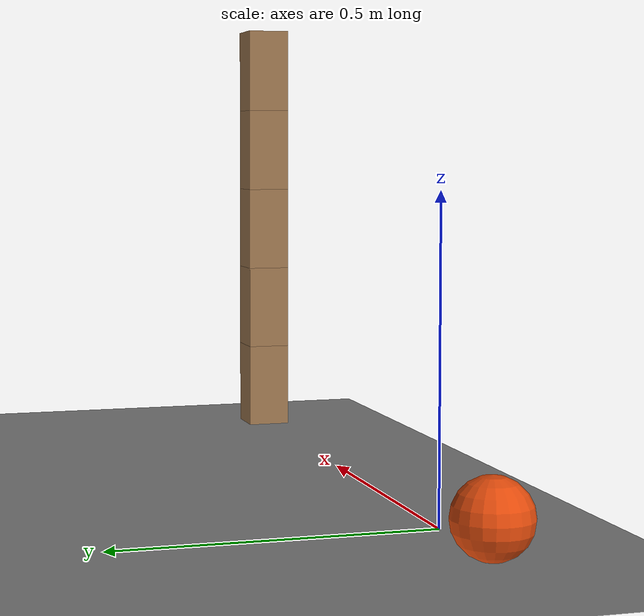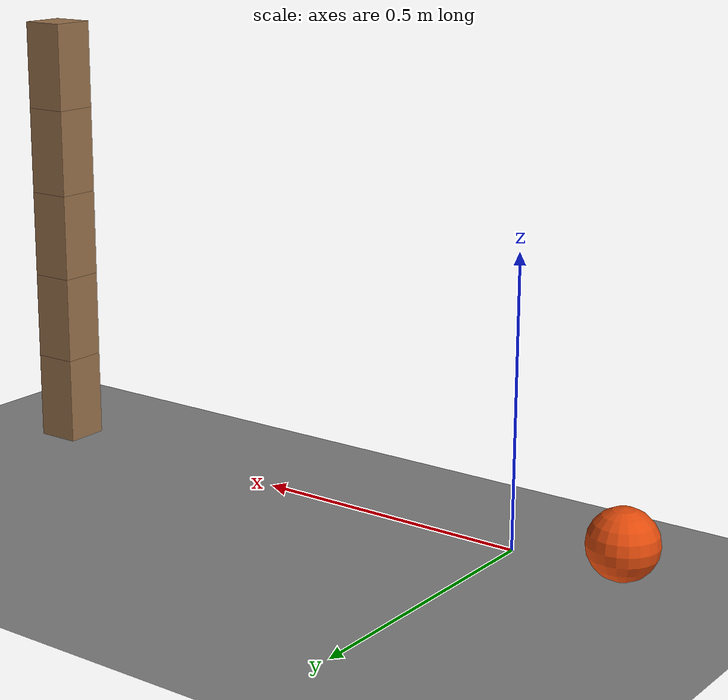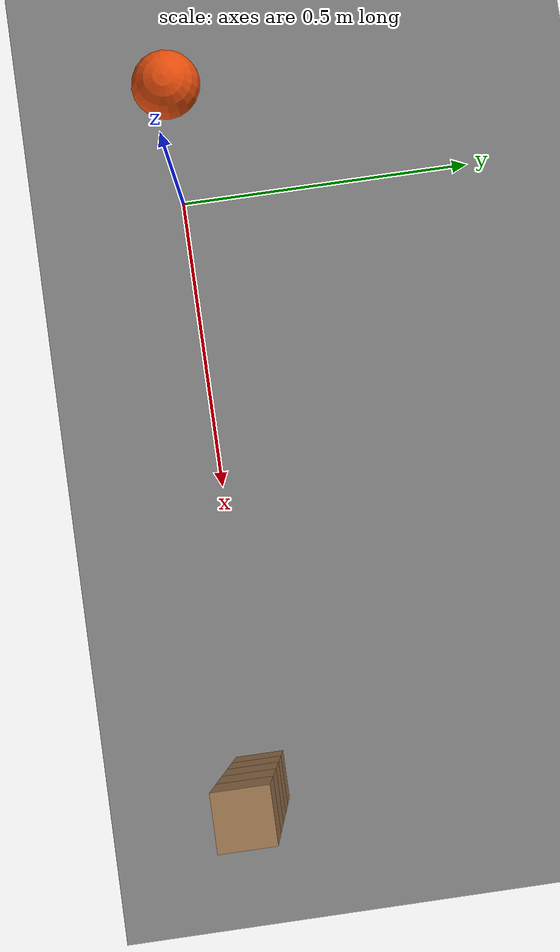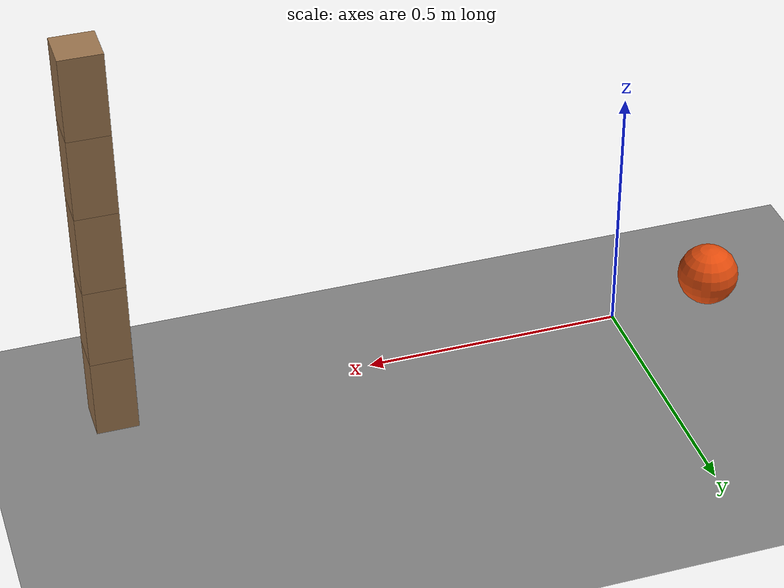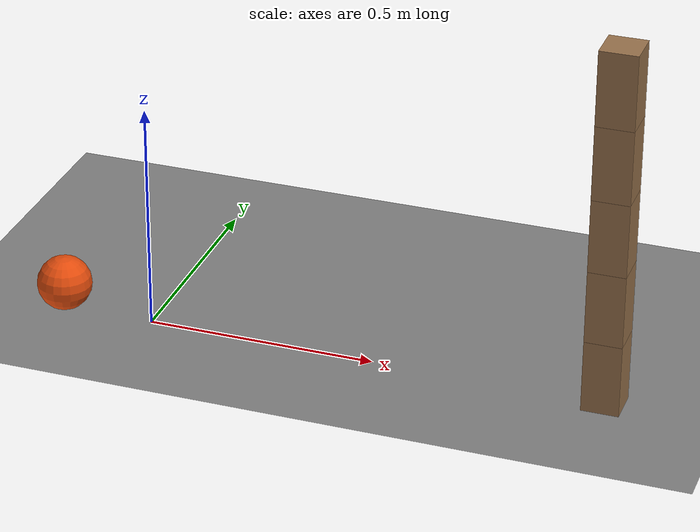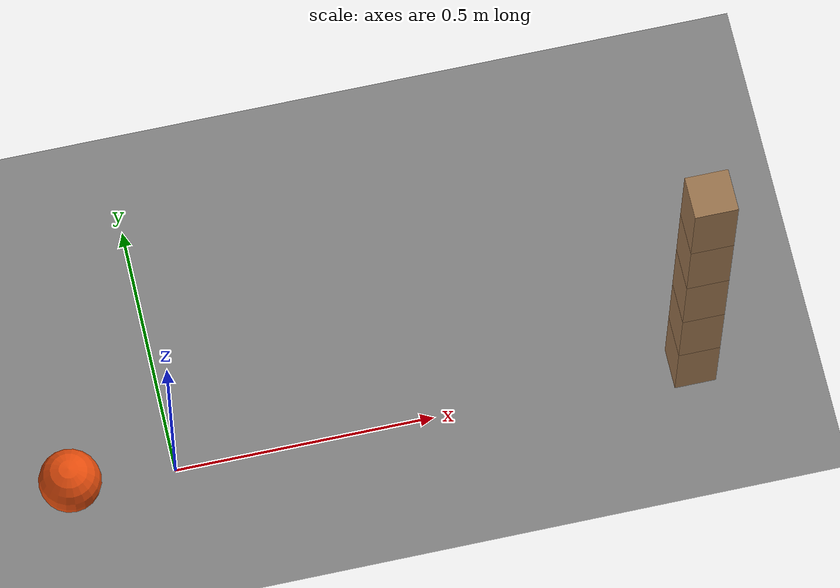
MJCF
<mujoco model="toppling_stack">
  <compiler angle="radian"/>
  <option timestep="0.002"/>
  <worldbody>
    <geom name="floor" type="plane" size="6 6 0.1" friction="0.8 0.005 0.002"/>
    <body name="block1" pos="1 0 0.08">
      <freejoint/>
      <geom name="block1" type="box" pos="0 0 0" size="0.04 0.04 0.08" mass="0.3" friction="0.6 0.005 0.002" rgba="0.6 0.45 0.3 1"/>
    </body>
    <body name="block2" pos="1 0 0.24">
      <freejoint/>
      <geom name="block2" type="box" pos="0 0 0" size="0.04 0.04 0.08" mass="0.3" friction="0.6 0.005 0.002" rgba="0.6 0.45 0.3 1"/>
    </body>
    <body name="block3" pos="1 0 0.4">
      <freejoint/>
      <geom name="block3" type="box" pos="0 0 0" size="0.04 0.04 0.08" mass="0.3" friction="0.6 0.005 0.002" rgba="0.6 0.45 0.3 1"/>
    </body>
    <body name="block4" pos="1 0 0.56">
      <freejoint/>
      <geom name="block4" type="box" pos="0 0 0" size="0.04 0.04 0.08" mass="0.3" friction="0.6 0.005 0.002" rgba="0.6 0.45 0.3 1"/>
    </body>
    <body name="block5" pos="1 0 0.72">
      <freejoint/>
      <geom name="block5" type="box" pos="0 0 0" size="0.04 0.04 0.08" mass="0.3" friction="0.6 0.005 0.002" rgba="0.6 0.45 0.3 1"/>
    </body>
    <body name="ball" pos="-0.2 0 0.06">
      <freejoint/>
      <geom name="ball" type="sphere" pos="0 0 0" size="0.06" mass="2" condim="6" friction="0.8 0.01 0.002" solref="0.01 1" rgba="0.9 0.3 0.05 1"/>
    </body>
  </worldbody>
  <keyframe>
    <key name="start" qpos="1 0 0.08 1 0 0 0 1 0 0.24 1 0 0 0 1 0 0.4 1 0 0 0 1 0 0.56 1 0 0 0 1 0 0.72 1 0 0 0 -0.2 0 0.06 1 0 0 0" qvel="0 0 0 0 0 0 0 0 0 0 0 0 0 0 0 0 0 0 0 0 0 0 0 0 0 0 0 0 0 0 1.2 0 0 0 20 0"/>
  </keyframe>
</mujoco>
